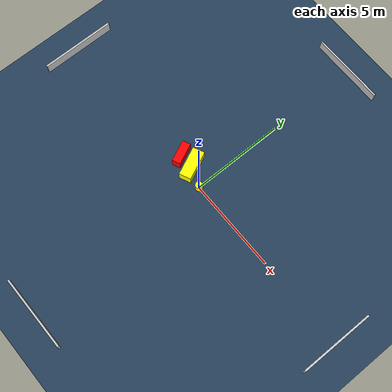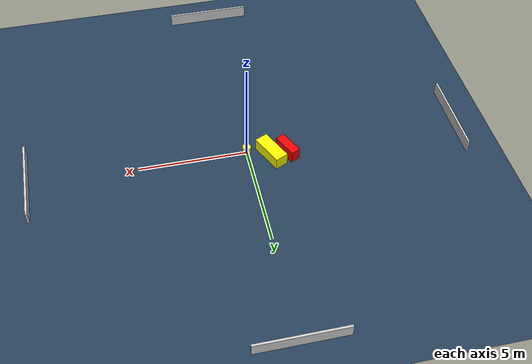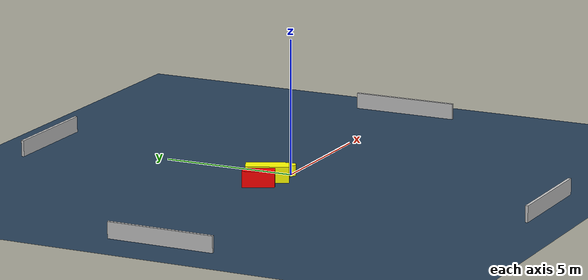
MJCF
<?xml version="1.0" ?>
<mujoco model="generated_environment">
  <option timestep="0.01" integrator="RK4" cone="elliptic"/>
  <default>
    <geom density="1"/>
  </default>
  <asset>
    <texture builtin="gradient" height="3072" name="skybox" rgb1="0.3 0.5 0.7" rgb2="0 0 0" type="skybox" width="512"/>
    <texture builtin="checker" height="300" name="groundplane" rgb1="0.2 0.3 0.4" rgb2="0.1 0.2 0.3" type="2d" width="300"/>
    <material name="groundplane" reflectance="0.2" texrepeat="5 5" texture="groundplane"/>
  </asset>
  <worldbody>
    <light dir="0 0 -1" directional="true" pos="0 0 1.5"/>
    <geom condim="3" friction="0.5 0.005 0.001" material="groundplane" name="floor" pos="0 0 0" size="0 0 0.05" type="plane"/>
    <body name="walls">
      <geom name="wall_1" condim="4" pos="-10.0 0.0 0.3" rgba="0.800000011920929 0.800000011920929 0.800000011920929 1.0" size="0.05 2.0 0.3" type="box"/>
      <geom name="wall_2" condim="4" pos="10.0 0.0 0.3" rgba="0.800000011920929 0.800000011920929 0.800000011920929 1.0" size="0.05 2.0 0.3" type="box"/>
      <geom name="wall_3" condim="4" pos="0.0 -10.0 0.3" rgba="0.800000011920929 0.800000011920929 0.800000011920929 1.0" size="2.0 0.05 0.3" type="box"/>
      <geom name="wall_4" condim="4" pos="0.0 10.0 0.3" rgba="0.800000011920929 0.800000011920929 0.800000011920929 1.0" size="2.0 0.05 0.3" type="box"/>
    </body>
    <body name="robot">
      <joint name="joint_x" type="slide" pos="0 0 0" axis="1 0 0"/>
      <joint name="joint_y" type="slide" pos="0 0 0" axis="0 1 0"/>
      <geom name="robot" type="cylinder" pos="0.0 0.0 0.2" size="0.2 0.2 0.0" mass="5.0" friction="1.0 0.005 0.0001" condim="4" rgba="1.0 1.0 0.0 1.0"/>
    </body>
    <body name="obstacle_1_movable">
      <geom name="obstacle_1_movable" condim="4" pos="-1.0661003821836441 0.41917624189516184 0.3" euler="0 0 114.54080357947757" friction="0.0 0.005 0.001" rgba="1.0 1.0 0.0 1.0" size="0.7858628091533104 0.31648575246388677 0.3" type="box" mass="0.1"/>
      <joint type="free"/>
    </body>
    <body name="obstacle_2_static">
      <geom name="obstacle_2_static" condim="4" pos="-1.846425251424356 0.379967187200109 0.3" euler="0 0 24.832641674450304" friction="0.0 0.005 0.001" rgba="1.0 0.0 0.0 1.0" size="0.2224440151970543 0.5875154775222267 0.3" type="box"/>
    </body>
  </worldbody>
  <actuator>
    <motor name="actuator_x" joint="joint_x" gear="1" ctrlrange="-1 1"/>
    <motor name="actuator_y" joint="joint_y" gear="1" ctrlrange="-1 1"/>
  </actuator>
</mujoco>
